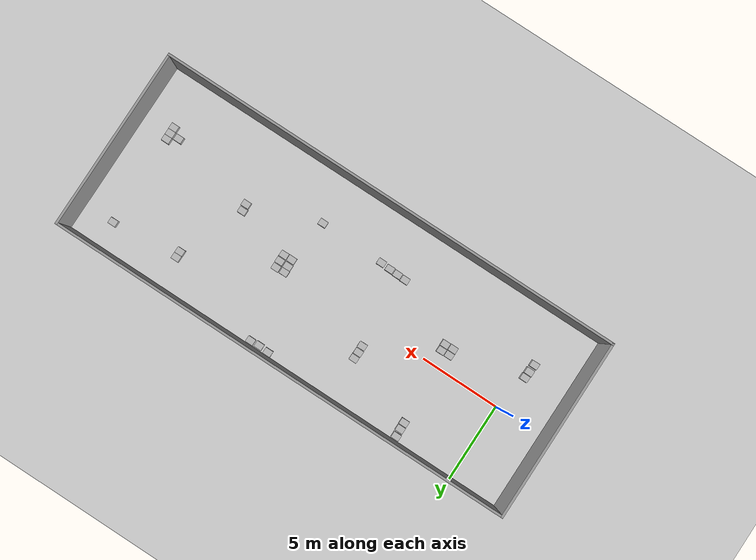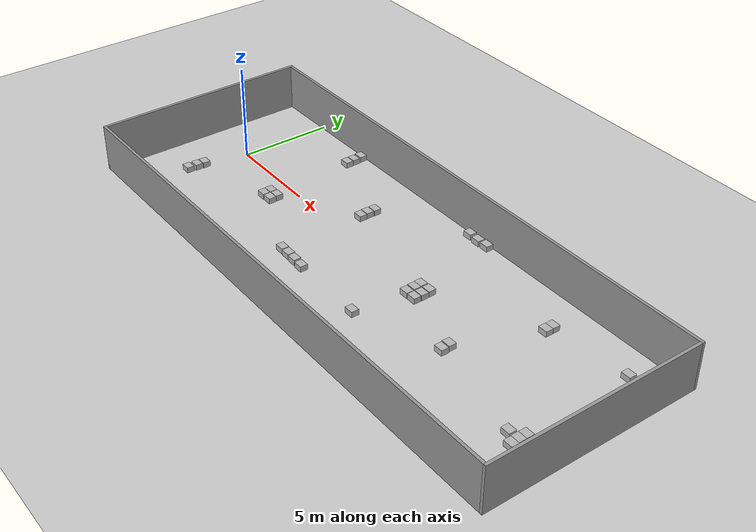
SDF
<sdf version="1.6">
 <world name="default">
  <plugin name="hello" filename="libhello.so"/>
  <light name="sun" type="directional">
   <pose>0 0 10 0 -0 0</pose>
   <diffuse>0.8 0.8 0.8 1</diffuse>
   <specular>0.2 0.2 0.2 1</specular>
   <attenuation>
    <range>1000</range>
    <constant>0.9</constant>
    <linear>0.01</linear>
    <quadratic>0.001</quadratic>
   </attenuation>
   <direction>-0.5 0.1 -0.9</direction>
  </light>
  <model name="ground_plane">
   <static>1</static>
   <link name="link">
    <collision name="collision">
     <geometry><plane><normal>0 0 1</normal><size>100 100</size></plane></geometry>
     <surface>
      <contact><collide_bitmask>65535</collide_bitmask></contact>
      <friction><ode><mu>100</mu><mu2>50</mu2></ode></friction>
     </surface>
    </collision>
    <visual name="visual">
     <cast_shadows>0</cast_shadows>
     <geometry><plane><normal>0 0 1</normal><size>100 100</size></plane></geometry>
     <material>
      <script><uri>file://media/materials/scripts/gazebo.material</uri><name>Gazebo/Grey</name></script>
     </material>
    </visual>
   </link>
  </model>
  <gravity>0 0 -9.8</gravity>
  <magnetic_field>6e-06 2.3e-05 -4.2e-05</magnetic_field>
  <atmosphere type="adiabatic"/>
  <physics name="default_physics" default="0" type="ode">
   <max_step_size>0.001</max_step_size>
   <real_time_factor>1</real_time_factor>
   <real_time_update_rate>1000</real_time_update_rate>
  </physics>
  <scene><ambient>0.4 0.4 0.4 1</ambient><background>0.7 0.7 0.7 1</background><shadows>1</shadows></scene>
  <spherical_coordinates>
   <surface_model>EARTH_WGS84</surface_model>
   <latitude_deg>0</latitude_deg>
   <longitude_deg>0</longitude_deg>
   <elevation>0</elevation>
   <heading_deg>0</heading_deg>
  </spherical_coordinates>
  <plugin name="collision_map_creator" filename="libcollision_map_creator.so"/>
  <model name="new_building">
   <pose>11.7286 -0.756936 0 0 -0 0</pose>
   <link name="Wall_15">
    <collision name="Wall_15_Collision">
     <geometry><box><size>11.5 0.15 2.5</size></box></geometry>
     <pose>0 0 1.25 0 -0 0</pose>
    </collision>
    <visual name="Wall_15_Visual">
     <pose>0 0 1.25 0 -0 0</pose>
     <geometry><box><size>11.5 0.15 2.5</size></box></geometry>
     <material>
      <script><uri>file://media/materials/scripts/gazebo.material</uri><name>Gazebo/Grey</name></script>
      <ambient>1 1 1 1</ambient>
     </material>
     <meta><layer>0</layer></meta>
    </visual>
    <pose>-14.8 0 0 0 0 -1.5708</pose>
   </link>
   <link name="Wall_16">
    <collision name="Wall_16_Collision">
     <geometry><box><size>29.75 0.15 2.5</size></box></geometry>
     <pose>0 0 1.25 0 -0 0</pose>
    </collision>
    <visual name="Wall_16_Visual">
     <pose>0 0 1.25 0 -0 0</pose>
     <geometry><box><size>29.75 0.15 2.5</size></box></geometry>
     <material>
      <script><uri>file://media/materials/scripts/gazebo.material</uri><name>Gazebo/Grey</name></script>
      <ambient>1 1 1 1</ambient>
     </material>
     <meta><layer>0</layer></meta>
    </visual>
    <pose>0 -5.675 0 0 -0 0</pose>
   </link>
   <link name="Wall_17">
    <collision name="Wall_17_Collision">
     <geometry><box><size>11.5 0.15 2.5</size></box></geometry>
     <pose>0 0 1.25 0 -0 0</pose>
    </collision>
    <visual name="Wall_17_Visual">
     <pose>0 0 1.25 0 -0 0</pose>
     <geometry><box><size>11.5 0.15 2.5</size></box></geometry>
     <material>
      <script><uri>file://media/materials/scripts/gazebo.material</uri><name>Gazebo/Grey</name></script>
      <ambient>1 1 1 1</ambient>
     </material>
     <meta><layer>0</layer></meta>
    </visual>
    <pose>14.8 0 0 0 -0 1.5708</pose>
   </link>
   <link name="Wall_18">
    <collision name="Wall_18_Collision">
     <geometry><box><size>29.75 0.15 2.5</size></box></geometry>
     <pose>0 0 1.25 0 -0 0</pose>
    </collision>
    <visual name="Wall_18_Visual">
     <pose>0 0 1.25 0 -0 0</pose>
     <geometry><box><size>29.75 0.15 2.5</size></box></geometry>
     <material>
      <script><uri>file://media/materials/scripts/gazebo.material</uri><name>Gazebo/Grey</name></script>
      <ambient>1 1 1 1</ambient>
     </material>
     <meta><layer>0</layer></meta>
    </visual>
    <pose>0 5.675 0 0 -0 3.14159</pose>
   </link>
   <static>1</static>
  </model>
  <plugin name="collision_map_creator" filename="libcollision_map_creator.so"/>
  <model name="cardboard_box">
   <pose>4.43506 -0.988756 0.149 0 -0 0</pose>
   <link name="link">
    <inertial>
     <mass>2</mass>
     <inertia>
      <ixx>0.0416667</ixx>
      <ixy>0</ixy>
      <ixz>0</ixz>
      <iyy>0.0566667</iyy>
      <iyz>0</iyz>
      <izz>0.0683333</izz>
     </inertia>
    </inertial>
    <collision name="collision">
     <geometry><box><size>0.5 0.4 0.3</size></box></geometry>
     <surface>
      <friction><ode><mu>1</mu><mu2>1</mu2></ode></friction>
      <contact><ode><kp>1e+07</kp><kd>1</kd><min_depth>0.001</min_depth><max_vel>0.1</max_vel></ode></contact>
     </surface>
    </collision>
    <visual name="visual">
     <pose>0 0 -0.15 0 -0 0</pose>
     <geometry>
      <mesh><uri>model://cardboard_box/meshes/cardboard_box.dae</uri><scale>1.25932 1.00745 0.755591</scale></mesh>
     </geometry>
    </visual>
   </link>
  </model>
  <model name="cardboard_box_clone">
   <pose>3.90873 -1.00916 0.149 0 -0 0</pose>
   <link name="link">
    <inertial>
     <mass>2</mass>
     <inertia>
      <ixx>0.0416667</ixx>
      <ixy>0</ixy>
      <ixz>0</ixz>
      <iyy>0.0566667</iyy>
      <iyz>0</iyz>
      <izz>0.0683333</izz>
     </inertia>
    </inertial>
    <collision name="collision">
     <geometry><box><size>0.5 0.4 0.3</size></box></geometry>
     <surface>
      <friction><ode><mu>1</mu><mu2>1</mu2></ode></friction>
      <contact><ode><kp>1e+07</kp><kd>1</kd><min_depth>0.001</min_depth><max_vel>0.1</max_vel></ode></contact>
     </surface>
    </collision>
    <visual name="visual">
     <pose>0 0 -0.15 0 -0 0</pose>
     <geometry>
      <mesh><uri>model://cardboard_box/meshes/cardboard_box.dae</uri><scale>1.25932 1.00745 0.755591</scale></mesh>
     </geometry>
    </visual>
   </link>
  </model>
  <model name="cardboard_box_clone_0">
   <pose>3.91427 -1.42314 0.149 0 -0 0</pose>
   <link name="link">
    <inertial>
     <mass>2</mass>
     <inertia>
      <ixx>0.0416667</ixx>
      <ixy>0</ixy>
      <ixz>0</ixz>
      <iyy>0.0566667</iyy>
      <iyz>0</iyz>
      <izz>0.0683333</izz>
     </inertia>
    </inertial>
    <collision name="collision">
     <geometry><box><size>0.5 0.4 0.3</size></box></geometry>
     <surface>
      <friction><ode><mu>1</mu><mu2>1</mu2></ode></friction>
      <contact><ode><kp>1e+07</kp><kd>1</kd><min_depth>0.001</min_depth><max_vel>0.1</max_vel></ode></contact>
     </surface>
    </collision>
    <visual name="visual">
     <pose>0 0 -0.15 0 -0 0</pose>
     <geometry>
      <mesh><uri>model://cardboard_box/meshes/cardboard_box.dae</uri><scale>1.25932 1.00745 0.755591</scale></mesh>
     </geometry>
    </visual>
   </link>
  </model>
  <model name="cardboard_box_clone_1">
   <pose>4.44726 -1.41258 0.149 0 -0 0</pose>
   <link name="link">
    <inertial>
     <mass>2</mass>
     <inertia>
      <ixx>0.0416667</ixx>
      <ixy>0</ixy>
      <ixz>0</ixz>
      <iyy>0.0566667</iyy>
      <iyz>0</iyz>
      <izz>0.0683333</izz>
     </inertia>
    </inertial>
    <collision name="collision">
     <geometry><box><size>0.5 0.4 0.3</size></box></geometry>
     <surface>
      <friction><ode><mu>1</mu><mu2>1</mu2></ode></friction>
      <contact><ode><kp>1e+07</kp><kd>1</kd><min_depth>0.001</min_depth><max_vel>0.1</max_vel></ode></contact>
     </surface>
    </collision>
    <visual name="visual">
     <pose>0 0 -0.15 0 -0 0</pose>
     <geometry>
      <mesh><uri>model://cardboard_box/meshes/cardboard_box.dae</uri><scale>1.25932 1.00745 0.755591</scale></mesh>
     </geometry>
    </visual>
   </link>
  </model>
  <model name="cardboard_box_clone_2">
   <pose>3.935 4.58789 0.149 0 -0 0</pose>
   <link name="link">
    <inertial>
     <mass>2</mass>
     <inertia>
      <ixx>0.0416667</ixx>
      <ixy>0</ixy>
      <ixz>0</ixz>
      <iyy>0.0566667</iyy>
      <iyz>0</iyz>
      <izz>0.0683333</izz>
     </inertia>
    </inertial>
    <collision name="collision">
     <geometry><box><size>0.5 0.4 0.3</size></box></geometry>
     <surface>
      <friction><ode><mu>1</mu><mu2>1</mu2></ode></friction>
      <contact><ode><kp>1e+07</kp><kd>1</kd><min_depth>0.001</min_depth><max_vel>0.1</max_vel></ode></contact>
     </surface>
    </collision>
    <visual name="visual">
     <pose>0 0 -0.15 0 -0 0</pose>
     <geometry>
      <mesh><uri>model://cardboard_box/meshes/cardboard_box.dae</uri><scale>1.25932 1.00745 0.755591</scale></mesh>
     </geometry>
    </visual>
   </link>
  </model>
  <model name="cardboard_box_clone_3">
   <pose>3.96007 4.11302 0.149 0 -0 0</pose>
   <link name="link">
    <inertial>
     <mass>2</mass>
     <inertia>
      <ixx>0.0416667</ixx>
      <ixy>0</ixy>
      <ixz>0</ixz>
      <iyy>0.0566667</iyy>
      <iyz>0</iyz>
      <izz>0.0683333</izz>
     </inertia>
    </inertial>
    <collision name="collision">
     <geometry><box><size>0.5 0.4 0.3</size></box></geometry>
     <surface>
      <friction><ode><mu>1</mu><mu2>1</mu2></ode></friction>
      <contact><ode><kp>1e+07</kp><kd>1</kd><min_depth>0.001</min_depth><max_vel>0.1</max_vel></ode></contact>
     </surface>
    </collision>
    <visual name="visual">
     <pose>0 0 -0.15 0 -0 0</pose>
     <geometry>
      <mesh><uri>model://cardboard_box/meshes/cardboard_box.dae</uri><scale>1.25932 1.00745 0.755591</scale></mesh>
     </geometry>
    </visual>
   </link>
  </model>
  <model name="cardboard_box_clone_4">
   <pose>3.97337 3.68346 0.149 0 -0 0</pose>
   <link name="link">
    <inertial>
     <mass>2</mass>
     <inertia>
      <ixx>0.0416667</ixx>
      <ixy>0</ixy>
      <ixz>0</ixz>
      <iyy>0.0566667</iyy>
      <iyz>0</iyz>
      <izz>0.0683333</izz>
     </inertia>
    </inertial>
    <collision name="collision">
     <geometry><box><size>0.5 0.4 0.3</size></box></geometry>
     <surface>
      <friction><ode><mu>1</mu><mu2>1</mu2></ode></friction>
      <contact><ode><kp>1e+07</kp><kd>1</kd><min_depth>0.001</min_depth><max_vel>0.1</max_vel></ode></contact>
     </surface>
    </collision>
    <visual name="visual">
     <pose>0 0 -0.15 0 -0 0</pose>
     <geometry>
      <mesh><uri>model://cardboard_box/meshes/cardboard_box.dae</uri><scale>1.25932 1.00745 0.755591</scale></mesh>
     </geometry>
    </visual>
   </link>
  </model>
  <model name="cardboard_box_clone_5">
   <pose>8.42207 2.16528 0.149 0 -0 0</pose>
   <link name="link">
    <inertial>
     <mass>2</mass>
     <inertia>
      <ixx>0.0416667</ixx>
      <ixy>0</ixy>
      <ixz>0</ixz>
      <iyy>0.0566667</iyy>
      <iyz>0</iyz>
      <izz>0.0683333</izz>
     </inertia>
    </inertial>
    <collision name="collision">
     <geometry><box><size>0.5 0.4 0.3</size></box></geometry>
     <surface>
      <friction><ode><mu>1</mu><mu2>1</mu2></ode></friction>
      <contact><ode><kp>1e+07</kp><kd>1</kd><min_depth>0.001</min_depth><max_vel>0.1</max_vel></ode></contact>
     </surface>
    </collision>
    <visual name="visual">
     <pose>0 0 -0.15 0 -0 0</pose>
     <geometry>
      <mesh><uri>model://cardboard_box/meshes/cardboard_box.dae</uri><scale>1.25932 1.00745 0.755591</scale></mesh>
     </geometry>
    </visual>
   </link>
  </model>
  <model name="cardboard_box_clone_6">
   <pose>8.4063 1.73753 0.149 0 -0 0</pose>
   <link name="link">
    <inertial>
     <mass>2</mass>
     <inertia>
      <ixx>0.0416667</ixx>
      <ixy>0</ixy>
      <ixz>0</ixz>
      <iyy>0.0566667</iyy>
      <iyz>0</iyz>
      <izz>0.0683333</izz>
     </inertia>
    </inertial>
    <collision name="collision">
     <geometry><box><size>0.5 0.4 0.3</size></box></geometry>
     <surface>
      <friction><ode><mu>1</mu><mu2>1</mu2></ode></friction>
      <contact><ode><kp>1e+07</kp><kd>1</kd><min_depth>0.001</min_depth><max_vel>0.1</max_vel></ode></contact>
     </surface>
    </collision>
    <visual name="visual">
     <pose>0 0 -0.15 0 -0 0</pose>
     <geometry>
      <mesh><uri>model://cardboard_box/meshes/cardboard_box.dae</uri><scale>1.25932 1.00745 0.755591</scale></mesh>
     </geometry>
    </visual>
   </link>
  </model>
  <model name="cardboard_box_clone_7">
   <pose>8.41979 1.30757 0.149 0 -0 0</pose>
   <link name="link">
    <inertial>
     <mass>2</mass>
     <inertia>
      <ixx>0.0416667</ixx>
      <ixy>0</ixy>
      <ixz>0</ixz>
      <iyy>0.0566667</iyy>
      <iyz>0</iyz>
      <izz>0.0683333</izz>
     </inertia>
    </inertial>
    <collision name="collision">
     <geometry><box><size>0.5 0.4 0.3</size></box></geometry>
     <surface>
      <friction><ode><mu>1</mu><mu2>1</mu2></ode></friction>
      <contact><ode><kp>1e+07</kp><kd>1</kd><min_depth>0.001</min_depth><max_vel>0.1</max_vel></ode></contact>
     </surface>
    </collision>
    <visual name="visual">
     <pose>0 0 -0.15 0 -0 0</pose>
     <geometry>
      <mesh><uri>model://cardboard_box/meshes/cardboard_box.dae</uri><scale>1.25932 1.00745 0.755591</scale></mesh>
     </geometry>
    </visual>
   </link>
  </model>
  <model name="cardboard_box_clone_8">
   <pose>8.4318 -3.25638 0.149 0 -0 0</pose>
   <link name="link">
    <inertial>
     <mass>2</mass>
     <inertia>
      <ixx>0.0416667</ixx>
      <ixy>0</ixy>
      <ixz>0</ixz>
      <iyy>0.0566667</iyy>
      <iyz>0</iyz>
      <izz>0.0683333</izz>
     </inertia>
    </inertial>
    <collision name="collision">
     <geometry><box><size>0.5 0.4 0.3</size></box></geometry>
     <surface>
      <friction><ode><mu>1</mu><mu2>1</mu2></ode></friction>
      <contact><ode><kp>1e+07</kp><kd>1</kd><min_depth>0.001</min_depth><max_vel>0.1</max_vel></ode></contact>
     </surface>
    </collision>
    <visual name="visual">
     <pose>0 0 -0.15 0 -0 0</pose>
     <geometry>
      <mesh><uri>model://cardboard_box/meshes/cardboard_box.dae</uri><scale>1.25932 1.00745 0.755591</scale></mesh>
     </geometry>
    </visual>
   </link>
  </model>
  <model name="cardboard_box_clone_9">
   <pose>8.97558 -3.28093 0.149 0 -0 0</pose>
   <link name="link">
    <inertial>
     <mass>2</mass>
     <inertia>
      <ixx>0.0416667</ixx>
      <ixy>0</ixy>
      <ixz>0</ixz>
      <iyy>0.0566667</iyy>
      <iyz>0</iyz>
      <izz>0.0683333</izz>
     </inertia>
    </inertial>
    <collision name="collision">
     <geometry><box><size>0.5 0.4 0.3</size></box></geometry>
     <surface>
      <friction><ode><mu>1</mu><mu2>1</mu2></ode></friction>
      <contact><ode><kp>1e+07</kp><kd>1</kd><min_depth>0.001</min_depth><max_vel>0.1</max_vel></ode></contact>
     </surface>
    </collision>
    <visual name="visual">
     <pose>0 0 -0.15 0 -0 0</pose>
     <geometry>
      <mesh><uri>model://cardboard_box/meshes/cardboard_box.dae</uri><scale>1.25932 1.00745 0.755591</scale></mesh>
     </geometry>
    </visual>
   </link>
  </model>
  <model name="cardboard_box_clone_10">
   <pose>9.51914 -3.30559 0.149 0 -0 0</pose>
   <link name="link">
    <inertial>
     <mass>2</mass>
     <inertia>
      <ixx>0.0416667</ixx>
      <ixy>0</ixy>
      <ixz>0</ixz>
      <iyy>0.0566667</iyy>
      <iyz>0</iyz>
      <izz>0.0683333</izz>
     </inertia>
    </inertial>
    <collision name="collision">
     <geometry><box><size>0.5 0.4 0.3</size></box></geometry>
     <surface>
      <friction><ode><mu>1</mu><mu2>1</mu2></ode></friction>
      <contact><ode><kp>1e+07</kp><kd>1</kd><min_depth>0.001</min_depth><max_vel>0.1</max_vel></ode></contact>
     </surface>
    </collision>
    <visual name="visual">
     <pose>0 0 -0.15 0 -0 0</pose>
     <geometry>
      <mesh><uri>model://cardboard_box/meshes/cardboard_box.dae</uri><scale>1.25932 1.00745 0.755591</scale></mesh>
     </geometry>
    </visual>
   </link>
  </model>
  <model name="cardboard_box_clone_11">
   <pose>10.1327 -3.35102 0.149 0 -0 0</pose>
   <link name="link">
    <inertial>
     <mass>2</mass>
     <inertia>
      <ixx>0.0416667</ixx>
      <ixy>0</ixy>
      <ixz>0</ixz>
      <iyy>0.0566667</iyy>
      <iyz>0</iyz>
      <izz>0.0683333</izz>
     </inertia>
    </inertial>
    <collision name="collision">
     <geometry><box><size>0.5 0.4 0.3</size></box></geometry>
     <surface>
      <friction><ode><mu>1</mu><mu2>1</mu2></ode></friction>
      <contact><ode><kp>1e+07</kp><kd>1</kd><min_depth>0.001</min_depth><max_vel>0.1</max_vel></ode></contact>
     </surface>
    </collision>
    <visual name="visual">
     <pose>0 0 -0.15 0 -0 0</pose>
     <geometry>
      <mesh><uri>model://cardboard_box/meshes/cardboard_box.dae</uri><scale>1.25932 1.00745 0.755591</scale></mesh>
     </geometry>
    </visual>
   </link>
  </model>
  <model name="cardboard_box_clone_12">
   <pose>-0.464011 -2.3203 0.149 0 -0 0</pose>
   <link name="link">
    <inertial>
     <mass>2</mass>
     <inertia>
      <ixx>0.0416667</ixx>
      <ixy>0</ixy>
      <ixz>0</ixz>
      <iyy>0.0566667</iyy>
      <iyz>0</iyz>
      <izz>0.0683333</izz>
     </inertia>
    </inertial>
    <collision name="collision">
     <geometry><box><size>0.5 0.4 0.3</size></box></geometry>
     <surface>
      <friction><ode><mu>1</mu><mu2>1</mu2></ode></friction>
      <contact><ode><kp>1e+07</kp><kd>1</kd><min_depth>0.001</min_depth><max_vel>0.1</max_vel></ode></contact>
     </surface>
    </collision>
    <visual name="visual">
     <pose>0 0 -0.15 0 -0 0</pose>
     <geometry>
      <mesh><uri>model://cardboard_box/meshes/cardboard_box.dae</uri><scale>1.25932 1.00745 0.755591</scale></mesh>
     </geometry>
    </visual>
   </link>
  </model>
  <model name="cardboard_box_clone_13">
   <pose>-0.493997 -2.74539 0.149 0 -0 0</pose>
   <link name="link">
    <inertial>
     <mass>2</mass>
     <inertia>
      <ixx>0.0416667</ixx>
      <ixy>0</ixy>
      <ixz>0</ixz>
      <iyy>0.0566667</iyy>
      <iyz>0</iyz>
      <izz>0.0683333</izz>
     </inertia>
    </inertial>
    <collision name="collision">
     <geometry><box><size>0.5 0.4 0.3</size></box></geometry>
     <surface>
      <friction><ode><mu>1</mu><mu2>1</mu2></ode></friction>
      <contact><ode><kp>1e+07</kp><kd>1</kd><min_depth>0.001</min_depth><max_vel>0.1</max_vel></ode></contact>
     </surface>
    </collision>
    <visual name="visual">
     <pose>0 0 -0.15 0 -0 0</pose>
     <geometry>
      <mesh><uri>model://cardboard_box/meshes/cardboard_box.dae</uri><scale>1.25932 1.00745 0.755591</scale></mesh>
     </geometry>
    </visual>
   </link>
  </model>
  <model name="cardboard_box_clone_14">
   <pose>-0.529692 -3.24113 0.149 0 -0 0</pose>
   <link name="link">
    <inertial>
     <mass>2</mass>
     <inertia>
      <ixx>0.0416667</ixx>
      <ixy>0</ixy>
      <ixz>0</ixz>
      <iyy>0.0566667</iyy>
      <iyz>0</iyz>
      <izz>0.0683333</izz>
     </inertia>
    </inertial>
    <collision name="collision">
     <geometry><box><size>0.5 0.4 0.3</size></box></geometry>
     <surface>
      <friction><ode><mu>1</mu><mu2>1</mu2></ode></friction>
      <contact><ode><kp>1e+07</kp><kd>1</kd><min_depth>0.001</min_depth><max_vel>0.1</max_vel></ode></contact>
     </surface>
    </collision>
    <visual name="visual">
     <pose>0 0 -0.15 0 -0 0</pose>
     <geometry>
      <mesh><uri>model://cardboard_box/meshes/cardboard_box.dae</uri><scale>1.25932 1.00745 0.755591</scale></mesh>
     </geometry>
    </visual>
   </link>
  </model>
  <model name="cardboard_box_clone_15">
   <pose>14.0113 4.59907 0.149 0 -0 0</pose>
   <link name="link">
    <inertial>
     <mass>2</mass>
     <inertia>
      <ixx>0.0416667</ixx>
      <ixy>0</ixy>
      <ixz>0</ixz>
      <iyy>0.0566667</iyy>
      <iyz>0</iyz>
      <izz>0.0683333</izz>
     </inertia>
    </inertial>
    <collision name="collision">
     <geometry><box><size>0.5 0.4 0.3</size></box></geometry>
     <surface>
      <friction><ode><mu>1</mu><mu2>1</mu2></ode></friction>
      <contact><ode><kp>1e+07</kp><kd>1</kd><min_depth>0.001</min_depth><max_vel>0.1</max_vel></ode></contact>
     </surface>
    </collision>
    <visual name="visual">
     <pose>0 0 -0.15 0 -0 0</pose>
     <geometry>
      <mesh><uri>model://cardboard_box/meshes/cardboard_box.dae</uri><scale>1.25932 1.00745 0.755591</scale></mesh>
     </geometry>
    </visual>
   </link>
  </model>
  <model name="cardboard_box_clone_16">
   <pose>13.4386 4.56858 0.149 0 -0 0</pose>
   <link name="link">
    <inertial>
     <mass>2</mass>
     <inertia>
      <ixx>0.0416667</ixx>
      <ixy>0</ixy>
      <ixz>0</ixz>
      <iyy>0.0566667</iyy>
      <iyz>0</iyz>
      <izz>0.0683333</izz>
     </inertia>
    </inertial>
    <collision name="collision">
     <geometry><box><size>0.5 0.4 0.3</size></box></geometry>
     <surface>
      <friction><ode><mu>1</mu><mu2>1</mu2></ode></friction>
      <contact><ode><kp>1e+07</kp><kd>1</kd><min_depth>0.001</min_depth><max_vel>0.1</max_vel></ode></contact>
     </surface>
    </collision>
    <visual name="visual">
     <pose>0 0 -0.15 0 -0 0</pose>
     <geometry>
      <mesh><uri>model://cardboard_box/meshes/cardboard_box.dae</uri><scale>1.25932 1.00745 0.755591</scale></mesh>
     </geometry>
    </visual>
   </link>
  </model>
  <model name="cardboard_box_clone_17">
   <pose>12.7995 4.6143 0.149 0 -0 0</pose>
   <link name="link">
    <inertial>
     <mass>2</mass>
     <inertia>
      <ixx>0.0416667</ixx>
      <ixy>0</ixy>
      <ixz>0</ixz>
      <iyy>0.0566667</iyy>
      <iyz>0</iyz>
      <izz>0.0683333</izz>
     </inertia>
    </inertial>
    <collision name="collision">
     <geometry><box><size>0.5 0.4 0.3</size></box></geometry>
     <surface>
      <friction><ode><mu>1</mu><mu2>1</mu2></ode></friction>
      <contact><ode><kp>1e+07</kp><kd>1</kd><min_depth>0.001</min_depth><max_vel>0.1</max_vel></ode></contact>
     </surface>
    </collision>
    <visual name="visual">
     <pose>0 0 -0.15 0 -0 0</pose>
     <geometry>
      <mesh><uri>model://cardboard_box/meshes/cardboard_box.dae</uri><scale>1.25932 1.00745 0.755591</scale></mesh>
     </geometry>
    </visual>
   </link>
  </model>
  <model name="cardboard_box_clone_18">
   <pose>14.5518 0.213158 0.149 0 -0 0.001288</pose>
   <link name="link">
    <inertial>
     <mass>2</mass>
     <inertia>
      <ixx>0.0416667</ixx>
      <ixy>0</ixy>
      <ixz>0</ixz>
      <iyy>0.0566667</iyy>
      <iyz>0</iyz>
      <izz>0.0683333</izz>
     </inertia>
    </inertial>
    <collision name="collision">
     <geometry><box><size>0.5 0.4 0.3</size></box></geometry>
     <surface>
      <friction><ode><mu>1</mu><mu2>1</mu2></ode></friction>
      <contact><ode><kp>1e+07</kp><kd>1</kd><min_depth>0.001</min_depth><max_vel>0.1</max_vel></ode></contact>
     </surface>
    </collision>
    <visual name="visual">
     <pose>0 0 -0.15 0 -0 0</pose>
     <geometry>
      <mesh><uri>model://cardboard_box/meshes/cardboard_box.dae</uri><scale>1.25932 1.00745 0.755591</scale></mesh>
     </geometry>
    </visual>
   </link>
  </model>
  <model name="cardboard_box_clone_19">
   <pose>14.5703 -0.185976 0.149 0 -0 0.001288</pose>
   <link name="link">
    <inertial>
     <mass>2</mass>
     <inertia>
      <ixx>0.0416667</ixx>
      <ixy>0</ixy>
      <ixz>0</ixz>
      <iyy>0.0566667</iyy>
      <iyz>0</iyz>
      <izz>0.0683333</izz>
     </inertia>
    </inertial>
    <collision name="collision">
     <geometry><box><size>0.5 0.4 0.3</size></box></geometry>
     <surface>
      <friction><ode><mu>1</mu><mu2>1</mu2></ode></friction>
      <contact><ode><kp>1e+07</kp><kd>1</kd><min_depth>0.001</min_depth><max_vel>0.1</max_vel></ode></contact>
     </surface>
    </collision>
    <visual name="visual">
     <pose>0 0 -0.15 0 -0 0</pose>
     <geometry>
      <mesh><uri>model://cardboard_box/meshes/cardboard_box.dae</uri><scale>1.25932 1.00745 0.755591</scale></mesh>
     </geometry>
    </visual>
   </link>
  </model>
  <model name="cardboard_box_clone_20">
   <pose>14.5974 -0.628907 0.149 0 -0 0</pose>
   <link name="link">
    <inertial>
     <mass>2</mass>
     <inertia>
      <ixx>0.0416667</ixx>
      <ixy>0</ixy>
      <ixz>0</ixz>
      <iyy>0.0566667</iyy>
      <iyz>0</iyz>
      <izz>0.0683333</izz>
     </inertia>
    </inertial>
    <collision name="collision">
     <geometry><box><size>0.5 0.4 0.3</size></box></geometry>
     <surface>
      <friction><ode><mu>1</mu><mu2>1</mu2></ode></friction>
      <contact><ode><kp>1e+07</kp><kd>1</kd><min_depth>0.001</min_depth><max_vel>0.1</max_vel></ode></contact>
     </surface>
    </collision>
    <visual name="visual">
     <pose>0 0 -0.15 0 -0 0</pose>
     <geometry>
      <mesh><uri>model://cardboard_box/meshes/cardboard_box.dae</uri><scale>1.25932 1.00745 0.755591</scale></mesh>
     </geometry>
    </visual>
   </link>
  </model>
  <model name="cardboard_box_clone_21">
   <pose>15.1243 -0.621589 0.149 0 -0 0</pose>
   <link name="link">
    <inertial>
     <mass>2</mass>
     <inertia>
      <ixx>0.0416667</ixx>
      <ixy>0</ixy>
      <ixz>0</ixz>
      <iyy>0.0566667</iyy>
      <iyz>0</iyz>
      <izz>0.0683333</izz>
     </inertia>
    </inertial>
    <collision name="collision">
     <geometry><box><size>0.5 0.4 0.3</size></box></geometry>
     <surface>
      <friction><ode><mu>1</mu><mu2>1</mu2></ode></friction>
      <contact><ode><kp>1e+07</kp><kd>1</kd><min_depth>0.001</min_depth><max_vel>0.1</max_vel></ode></contact>
     </surface>
    </collision>
    <visual name="visual">
     <pose>0 0 -0.15 0 -0 0</pose>
     <geometry>
      <mesh><uri>model://cardboard_box/meshes/cardboard_box.dae</uri><scale>1.25932 1.00745 0.755591</scale></mesh>
     </geometry>
    </visual>
   </link>
  </model>
  <model name="cardboard_box_clone_22">
   <pose>15.1288 -0.191558 0.149 0 -0 0</pose>
   <link name="link">
    <inertial>
     <mass>2</mass>
     <inertia>
      <ixx>0.0416667</ixx>
      <ixy>0</ixy>
      <ixz>0</ixz>
      <iyy>0.0566667</iyy>
      <iyz>0</iyz>
      <izz>0.0683333</izz>
     </inertia>
    </inertial>
    <collision name="collision">
     <geometry><box><size>0.5 0.4 0.3</size></box></geometry>
     <surface>
      <friction><ode><mu>1</mu><mu2>1</mu2></ode></friction>
      <contact><ode><kp>1e+07</kp><kd>1</kd><min_depth>0.001</min_depth><max_vel>0.1</max_vel></ode></contact>
     </surface>
    </collision>
    <visual name="visual">
     <pose>0 0 -0.15 0 -0 0</pose>
     <geometry>
      <mesh><uri>model://cardboard_box/meshes/cardboard_box.dae</uri><scale>1.25932 1.00745 0.755591</scale></mesh>
     </geometry>
    </visual>
   </link>
  </model>
  <model name="cardboard_box_clone_23">
   <pose>15.1115 0.24011 0.149 0 -0 0</pose>
   <link name="link">
    <inertial>
     <mass>2</mass>
     <inertia>
      <ixx>0.0416667</ixx>
      <ixy>0</ixy>
      <ixz>0</ixz>
      <iyy>0.0566667</iyy>
      <iyz>0</iyz>
      <izz>0.0683333</izz>
     </inertia>
    </inertial>
    <collision name="collision">
     <geometry><box><size>0.5 0.4 0.3</size></box></geometry>
     <surface>
      <friction><ode><mu>1</mu><mu2>1</mu2></ode></friction>
      <contact><ode><kp>1e+07</kp><kd>1</kd><min_depth>0.001</min_depth><max_vel>0.1</max_vel></ode></contact>
     </surface>
    </collision>
    <visual name="visual">
     <pose>0 0 -0.15 0 -0 0</pose>
     <geometry>
      <mesh><uri>model://cardboard_box/meshes/cardboard_box.dae</uri><scale>1.25932 1.00745 0.755591</scale></mesh>
     </geometry>
    </visual>
   </link>
  </model>
  <model name="cardboard_box_clone_24">
   <pose>14.2452 -3.41631 0.149 0 -0 0</pose>
   <link name="link">
    <inertial>
     <mass>2</mass>
     <inertia>
      <ixx>0.0416667</ixx>
      <ixy>0</ixy>
      <ixz>0</ixz>
      <iyy>0.0566667</iyy>
      <iyz>0</iyz>
      <izz>0.0683333</izz>
     </inertia>
    </inertial>
    <collision name="collision">
     <geometry><box><size>0.5 0.4 0.3</size></box></geometry>
     <surface>
      <friction><ode><mu>1</mu><mu2>1</mu2></ode></friction>
      <contact><ode><kp>1e+07</kp><kd>1</kd><min_depth>0.001</min_depth><max_vel>0.1</max_vel></ode></contact>
     </surface>
    </collision>
    <visual name="visual">
     <pose>0 0 -0.15 0 -0 0</pose>
     <geometry>
      <mesh><uri>model://cardboard_box/meshes/cardboard_box.dae</uri><scale>1.25932 1.00745 0.755591</scale></mesh>
     </geometry>
    </visual>
   </link>
  </model>
  <model name="cardboard_box_clone_25">
   <pose>20.2991 2.93273 0.149 0 0 -8e-06</pose>
   <link name="link">
    <inertial>
     <mass>2</mass>
     <inertia>
      <ixx>0.0416667</ixx>
      <ixy>0</ixy>
      <ixz>0</ixz>
      <iyy>0.0566667</iyy>
      <iyz>0</iyz>
      <izz>0.0683333</izz>
     </inertia>
    </inertial>
    <collision name="collision">
     <geometry><box><size>0.5 0.4 0.3</size></box></geometry>
     <surface>
      <friction><ode><mu>1</mu><mu2>1</mu2></ode></friction>
      <contact><ode><kp>1e+07</kp><kd>1</kd><min_depth>0.001</min_depth><max_vel>0.1</max_vel></ode></contact>
     </surface>
    </collision>
    <visual name="visual">
     <pose>0 0 -0.15 0 -0 0</pose>
     <geometry>
      <mesh><uri>model://cardboard_box/meshes/cardboard_box.dae</uri><scale>1.25932 1.00745 0.755591</scale></mesh>
     </geometry>
    </visual>
   </link>
  </model>
  <model name="cardboard_box_clone_26">
   <pose>20.2941 2.53353 0.149 0 0 -8e-06</pose>
   <link name="link">
    <inertial>
     <mass>2</mass>
     <inertia>
      <ixx>0.0416667</ixx>
      <ixy>0</ixy>
      <ixz>0</ixz>
      <iyy>0.0566667</iyy>
      <iyz>0</iyz>
      <izz>0.0683333</izz>
     </inertia>
    </inertial>
    <collision name="collision">
     <geometry><box><size>0.5 0.4 0.3</size></box></geometry>
     <surface>
      <friction><ode><mu>1</mu><mu2>1</mu2></ode></friction>
      <contact><ode><kp>1e+07</kp><kd>1</kd><min_depth>0.001</min_depth><max_vel>0.1</max_vel></ode></contact>
     </surface>
    </collision>
    <visual name="visual">
     <pose>0 0 -0.15 0 -0 0</pose>
     <geometry>
      <mesh><uri>model://cardboard_box/meshes/cardboard_box.dae</uri><scale>1.25932 1.00745 0.755591</scale></mesh>
     </geometry>
    </visual>
   </link>
  </model>
  <model name="cardboard_box_clone_27">
   <pose>18.5669 -1.43856 0.149 0 -0 0</pose>
   <link name="link">
    <inertial>
     <mass>2</mass>
     <inertia>
      <ixx>0.0416667</ixx>
      <ixy>0</ixy>
      <ixz>0</ixz>
      <iyy>0.0566667</iyy>
      <iyz>0</iyz>
      <izz>0.0683333</izz>
     </inertia>
    </inertial>
    <collision name="collision">
     <geometry><box><size>0.5 0.4 0.3</size></box></geometry>
     <surface>
      <friction><ode><mu>1</mu><mu2>1</mu2></ode></friction>
      <contact><ode><kp>1e+07</kp><kd>1</kd><min_depth>0.001</min_depth><max_vel>0.1</max_vel></ode></contact>
     </surface>
    </collision>
    <visual name="visual">
     <pose>0 0 -0.15 0 -0 0</pose>
     <geometry>
      <mesh><uri>model://cardboard_box/meshes/cardboard_box.dae</uri><scale>1.25932 1.00745 0.755591</scale></mesh>
     </geometry>
    </visual>
   </link>
  </model>
  <model name="cardboard_box_clone_28">
   <pose>18.6044 -1.88315 0.149 0 -0 0</pose>
   <link name="link">
    <inertial>
     <mass>2</mass>
     <inertia>
      <ixx>0.0416667</ixx>
      <ixy>0</ixy>
      <ixz>0</ixz>
      <iyy>0.0566667</iyy>
      <iyz>0</iyz>
      <izz>0.0683333</izz>
     </inertia>
    </inertial>
    <collision name="collision">
     <geometry><box><size>0.5 0.4 0.3</size></box></geometry>
     <surface>
      <friction><ode><mu>1</mu><mu2>1</mu2></ode></friction>
      <contact><ode><kp>1e+07</kp><kd>1</kd><min_depth>0.001</min_depth><max_vel>0.1</max_vel></ode></contact>
     </surface>
    </collision>
    <visual name="visual">
     <pose>0 0 -0.15 0 -0 0</pose>
     <geometry>
      <mesh><uri>model://cardboard_box/meshes/cardboard_box.dae</uri><scale>1.25932 1.00745 0.755591</scale></mesh>
     </geometry>
    </visual>
   </link>
  </model>
  <model name="cardboard_box_clone_29">
   <pose>24.6018 -2.51888 0.149 0 0 -0.000187</pose>
   <link name="link">
    <inertial>
     <mass>2</mass>
     <inertia>
      <ixx>0.0416667</ixx>
      <ixy>0</ixy>
      <ixz>0</ixz>
      <iyy>0.0566667</iyy>
      <iyz>0</iyz>
      <izz>0.0683333</izz>
     </inertia>
    </inertial>
    <collision name="collision">
     <geometry><box><size>0.5 0.4 0.3</size></box></geometry>
     <surface>
      <friction><ode><mu>1</mu><mu2>1</mu2></ode></friction>
      <contact><ode><kp>1e+07</kp><kd>1</kd><min_depth>0.001</min_depth><max_vel>0.1</max_vel></ode></contact>
     </surface>
    </collision>
    <visual name="visual">
     <pose>0 0 -0.15 0 -0 0</pose>
     <geometry>
      <mesh><uri>model://cardboard_box/meshes/cardboard_box.dae</uri><scale>1.25932 1.00745 0.755591</scale></mesh>
     </geometry>
    </visual>
   </link>
  </model>
  <model name="cardboard_box_clone_30">
   <pose>24.5996 -2.91795 0.149 0 0 -0.000153</pose>
   <link name="link">
    <inertial>
     <mass>2</mass>
     <inertia>
      <ixx>0.0416667</ixx>
      <ixy>0</ixy>
      <ixz>0</ixz>
      <iyy>0.0566667</iyy>
      <iyz>0</iyz>
      <izz>0.0683333</izz>
     </inertia>
    </inertial>
    <collision name="collision">
     <geometry><box><size>0.5 0.4 0.3</size></box></geometry>
     <surface>
      <friction><ode><mu>1</mu><mu2>1</mu2></ode></friction>
      <contact><ode><kp>1e+07</kp><kd>1</kd><min_depth>0.001</min_depth><max_vel>0.1</max_vel></ode></contact>
     </surface>
    </collision>
    <visual name="visual">
     <pose>0 0 -0.15 0 -0 0</pose>
     <geometry>
      <mesh><uri>model://cardboard_box/meshes/cardboard_box.dae</uri><scale>1.25932 1.00745 0.755591</scale></mesh>
     </geometry>
    </visual>
   </link>
  </model>
  <model name="cardboard_box_clone_31">
   <pose>24.6157 -3.3172 0.149 0 0 -0.000147</pose>
   <link name="link">
    <inertial>
     <mass>2</mass>
     <inertia>
      <ixx>0.0416667</ixx>
      <ixy>0</ixy>
      <ixz>0</ixz>
      <iyy>0.0566667</iyy>
      <iyz>0</iyz>
      <izz>0.0683333</izz>
     </inertia>
    </inertial>
    <collision name="collision">
     <geometry><box><size>0.5 0.4 0.3</size></box></geometry>
     <surface>
      <friction><ode><mu>1</mu><mu2>1</mu2></ode></friction>
      <contact><ode><kp>1e+07</kp><kd>1</kd><min_depth>0.001</min_depth><max_vel>0.1</max_vel></ode></contact>
     </surface>
    </collision>
    <visual name="visual">
     <pose>0 0 -0.15 0 -0 0</pose>
     <geometry>
      <mesh><uri>model://cardboard_box/meshes/cardboard_box.dae</uri><scale>1.25932 1.00745 0.755591</scale></mesh>
     </geometry>
    </visual>
   </link>
  </model>
  <model name="cardboard_box_clone_32">
   <pose>24.0162 -2.92231 0.149 0 -0 0</pose>
   <link name="link">
    <inertial>
     <mass>2</mass>
     <inertia>
      <ixx>0.0416667</ixx>
      <ixy>0</ixy>
      <ixz>0</ixz>
      <iyy>0.0566667</iyy>
      <iyz>0</iyz>
      <izz>0.0683333</izz>
     </inertia>
    </inertial>
    <collision name="collision">
     <geometry><box><size>0.5 0.4 0.3</size></box></geometry>
     <surface>
      <friction><ode><mu>1</mu><mu2>1</mu2></ode></friction>
      <contact><ode><kp>1e+07</kp><kd>1</kd><min_depth>0.001</min_depth><max_vel>0.1</max_vel></ode></contact>
     </surface>
    </collision>
    <visual name="visual">
     <pose>0 0 -0.15 0 -0 0</pose>
     <geometry>
      <mesh><uri>model://cardboard_box/meshes/cardboard_box.dae</uri><scale>1.25932 1.00745 0.755591</scale></mesh>
     </geometry>
    </visual>
   </link>
  </model>
  <model name="cardboard_box_clone_33">
   <pose>24.5112 3.23818 0.149 0 -0 0</pose>
   <link name="link">
    <inertial>
     <mass>2</mass>
     <inertia>
      <ixx>0.0416667</ixx>
      <ixy>0</ixy>
      <ixz>0</ixz>
      <iyy>0.0566667</iyy>
      <iyz>0</iyz>
      <izz>0.0683333</izz>
     </inertia>
    </inertial>
    <collision name="collision">
     <geometry><box><size>0.5 0.4 0.3</size></box></geometry>
     <surface>
      <friction><ode><mu>1</mu><mu2>1</mu2></ode></friction>
      <contact><ode><kp>1e+07</kp><kd>1</kd><min_depth>0.001</min_depth><max_vel>0.1</max_vel></ode></contact>
     </surface>
    </collision>
    <visual name="visual">
     <pose>0 0 -0.15 0 -0 0</pose>
     <geometry>
      <mesh><uri>model://cardboard_box/meshes/cardboard_box.dae</uri><scale>1.25932 1.00745 0.755591</scale></mesh>
     </geometry>
    </visual>
   </link>
  </model>
 </world>
</sdf>
